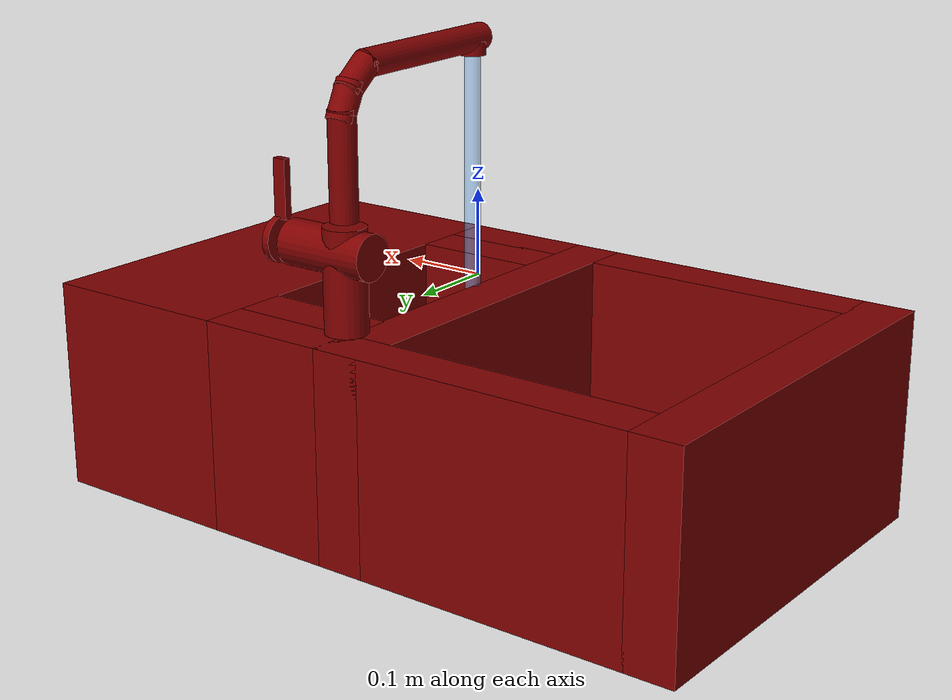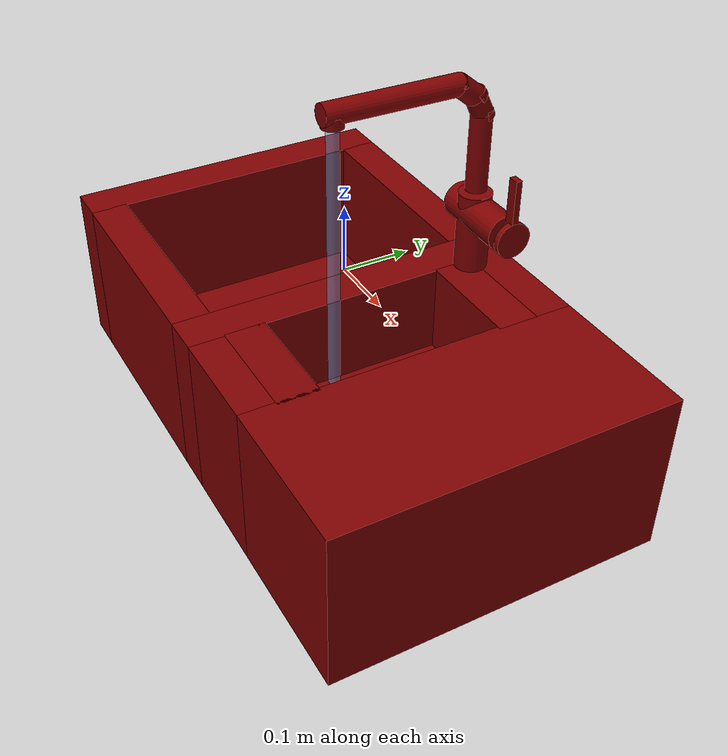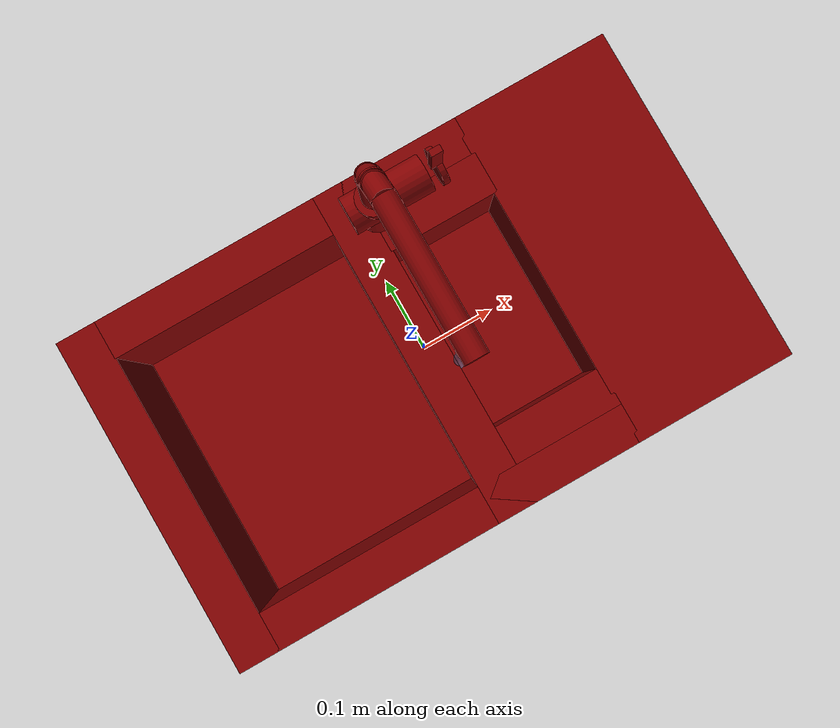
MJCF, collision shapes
<?xml version='1.0' encoding='UTF-8'?>
<mujoco model="model">
  <option timestep="0.002" gravity="0.0 0.0 -9.81"/>
  <compiler angle="radian"/>
  <asset>
    <mesh file="visuals/handle.obj" name="handle_vis"/>
    <mesh file="visuals/Body001.obj" name="Body001_vis"/>
    <mesh file="visuals/spout.obj" name="spout_vis"/>
    <texture file="visuals/T_BC001.png" name="Body001_material" type="2d"/>
    <material name="Body001_material" rgba="1 1 1 1.0" texture="Body001_material" shininess="0.1" specular="3"/>
    <texture file="visuals/T_BC001.png" name="handle_material" type="2d"/>
    <material name="handle_material" rgba="1 1 1 1.0" texture="handle_material" shininess="0.1" specular="5"/>
    <texture file="visuals/T_BC001.png" name="spout_material" type="2d"/>
    <material name="spout_material" rgba="1 1 1 1.0" texture="spout_material" shininess="0.1" specular="5"/>
  </asset>
  <default>
    <default class="visual">
      <geom conaffinity="0" contype="0" group="1" type="mesh"/>
    </default>
    <default class="collision">
      <geom group="0" rgba="0.5 0 0 0.5" solimp="0.998 0.998 0.001" solref="0.001 2"/>
    </default>
    <default class="spawn">
      <geom group="0" rgba="1 1 1 0.5" contype="0" conaffinity="0"/>
      <site group="0" rgba="1 1 1 0.5"/>
    </default>
    <default class="region">
      <geom group="1" conaffinity="0" contype="0" rgba="0 1 0 0"/>
    </default>
  </default>
  <worldbody>
    <body>
      <body name="object">
        <geom mesh="Body001_vis" type="mesh" solimp="0.998 0.998 0.001" solref="0.001 1" friction="0.95 0.3 0.1" class="visual" material="Body001_material"/>
        <geom type="box" pos="-0.39150618 -0.00001603 -0.15239353" size="0.030224323272705078 0.2499837577342987 0.12578809261322021" quat="1.0 0.0 0.0 0.0" class="collision"/>
        <geom type="box" pos="0.00046265 -0.00001604 -0.15239353" size="0.02948875166475773 0.2499837875366211 0.12578809261322021" quat="1.0 0.0 0.0 0.0" class="collision"/>
        <geom type="box" pos="0.30372919 -0.00001605 -0.15239353" size="0.1180010661482811 0.2499837577342987 0.12578809261322021" quat="1.0 0.0 0.0 0.0" class="collision"/>
        <geom type="box" pos="-0.08614089 0.22150457 -0.15239353" size="0.2771652936935425 0.02846313640475273 0.12578809261322021" quat="1.0 0.0 0.0 0.0" class="collision"/>
        <geom type="box" pos="-0.08614089 -0.22186838 -0.15239353" size="0.2771652936935425 0.028131429105997086 0.12578809261322021" quat="1.0 0.0 0.0 0.0" class="collision"/>
        <geom type="box" pos="0.10907894 -0.16716630 -0.15239353" size="0.08194547891616821 0.03034169226884842 0.12578809261322021" quat="1.0 0.0 0.0 0.0" class="collision"/>
        <geom type="box" pos="0.10907894 0.16499996 -0.15239353" size="0.08194547891616821 0.03034169226884842 0.12578809261322021" quat="1.0 0.0 0.0 0.0" class="collision"/>
        <geom type="box" pos="-0.19534470 -0.00036902 -0.25428174" size="0.1675480157136917 0.19444924592971802 0.023899877443909645" quat="1.0 0.0 0.0 0.0" class="collision"/>
        <geom type="box" pos="0.10850374 -0.00212937 -0.21912594" size="0.08107646554708481 0.13783448934555054 0.05877792090177536" quat="1.0 0.0 0.0 0.0" class="collision"/>
        <geom type="cylinder" pos="0.03579006 0.18793207 0.03143150" size="0.02456476166844368 0.06040993332862854" quat="1.0 0.0 0.0 0.0" class="collision"/>
        <geom type="cylinder" pos="0.05378679 0.18813891 0.06302811" size="0.026115644723176956 0.05618581548333168" quat="0.7071068286895752 -0.0 0.7071067690849304 0.0" class="collision"/>
        <body name="handle">
          <joint axis="1.0 0.0 0.0" pos="0.12344600 0.18800103 0.06361843" limited="true" name="handle_temp_joint" type="hinge" range="-0.7853981633974483 0.7853981633974483" damping="0.5" frictionloss="1" armature="2"/>
          <joint axis="0.0 1.0 0.0" pos="0.12344600 0.18800103 0.06361843" limited="true" name="handle_joint" type="hinge" range="0 0.5" damping="0.5" frictionloss="1" armature="2"/>
          <geom mesh="handle_vis" type="mesh" solimp="0.998 0.998 0.001" solref="0.001 1" friction="0.95 0.3 0.1" class="visual" material="handle_material"/>
          <geom name="handle_main" type="box" pos="0.12360661 0.18801452 0.11995550" size="0.007959337905049324 0.004582853987812996 0.03360467776656151" quat="1.0 0.0 0.0 0.0" class="collision"/>
          <geom type="cylinder" pos="0.12731802 0.18813891 0.06302811" size="0.026115644723176956 0.004379336256533861" quat="0.7071068286895752 -0.0 0.7071067690849304 0.0" class="collision"/>
        </body>
        <body name="spout">
          <joint axis="0.0 0.0 1.0" pos="0.03568987 0.18800018 0.18611431" limited="true" name="spout_joint" range="-0.7853981633974483 0.7853981633974483" type="hinge" damping="10"/>
          <site type="cylinder" rgba="0.5 0.75 1 0.5" size="0.009254577569663525 0.24651148915290833" pos="0.03548463 -0.03592386 -0.00362208" name="water"/>
          <geom mesh="spout_vis" type="mesh" solimp="0.998 0.998 0.001" solref="0.001 1" friction="0.95 0.3 0.1" class="visual" material="spout_material"/>
          <geom type="cylinder" pos="0.03579006 0.18793207 0.15707012" size="0.015719404444098473 0.06040984019637108" quat="1.0 0.0 0.0 0.0" class="collision"/>
          <geom type="cylinder" pos="0.03579006 0.18211218 0.22434825" size="0.015719404444098473 0.022149622440338135" quat="0.9745777249336243 0.22404976189136505 0.0 0.0" class="collision"/>
          <geom type="cylinder" pos="0.03579006 0.16335925 0.24719665" size="0.015719404444098473 0.022149620577692986" quat="0.9015616178512573 0.43265077471733093 0.0 0.0" class="collision"/>
          <geom type="cylinder" pos="0.03579006 0.04987216 0.26050230" size="0.015719404444098473 0.10244826227426529" quat="0.7115802764892578 0.7026048302650452 0.0 0.0" class="collision" name="spout_main"/>
          <geom type="cylinder" pos="0.03579006 -0.03648239 0.25080888" size="0.015719404444098473 0.007953429594635963" quat="1.0 0.0 0.0 0.0" class="collision"/>
        </body>
        <geom class="region" name="reg_basin_left" type="box" pos="-0.19478132 -0.0002489499999999978 -0.135663495" size="0.14947225 0.17798444 0.093523305"/>
        <geom class="region" name="reg_basin_right" type="box" pos="0.10871842500000001 -0.0006914400000000015 -0.10057514000000001" size="0.067339965 0.12745505000000001 0.05807768"/>
        <geom class="region" name="reg_main" type="box" pos="-1.3000000001484047e-07 1.900000000110147e-07 -0.15249605" size="0.42273037 0.251 0.12511434"/>
      </body>
    </body>
  </worldbody>
  <actuator>
    <motor name="handle_joint_actuator" joint="handle_joint" gear="10"/>
    <motor name="handle_temp_joint_actuator" joint="handle_temp_joint" gear="10"/>
    <motor name="spout_joint_actuator" joint="spout_joint" gear="10"/>
  </actuator>
</mujoco>
